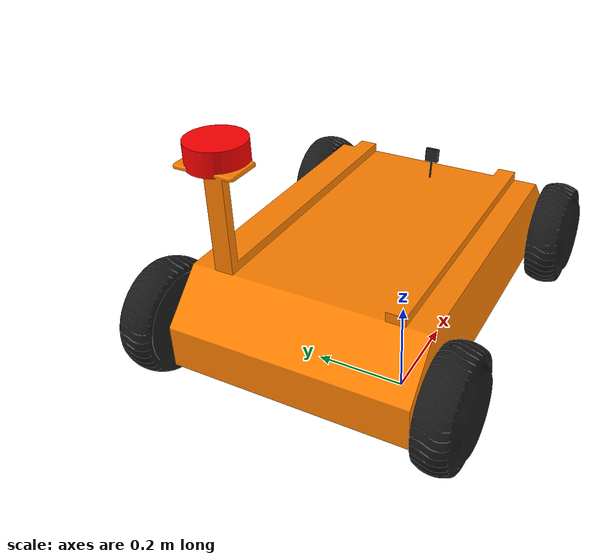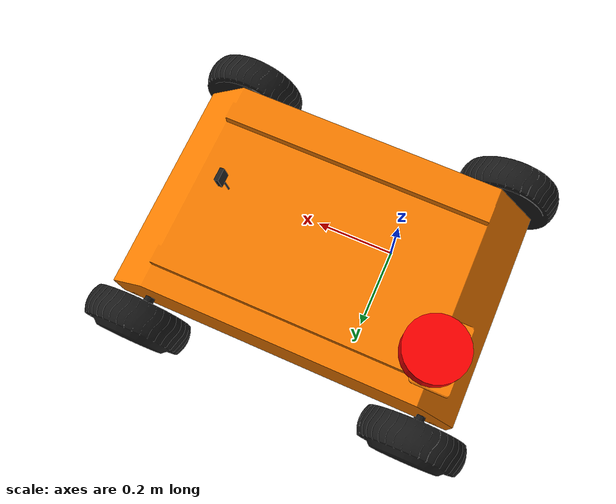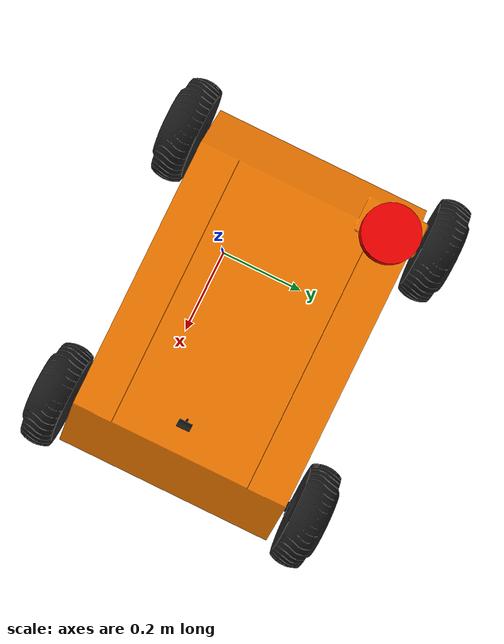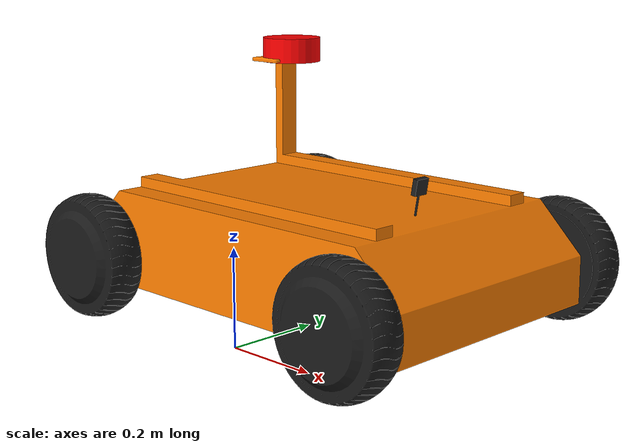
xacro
<?xml version="1.0"?>
<robot name="RALLP_2" xmlns:xacro="http://www.ros.org/wiki/xacro">
  <gazebo>
    <plugin filename="gz-sim-sensors-system" name="gz::sim::systems::Sensors">
      <render_engine>ogre2</render_engine>
    </plugin>
  </gazebo>

  <!-- Includes -->
  <xacro:include filename="$(find rallp)/urdf2/robot_core.xacro"/>
  <xacro:include filename="$(find rallp)/urdf2/inertial_macros.xacro"/>
  <xacro:include filename="$(find rallp)/urdf2/lidar.xacro"/>
  <xacro:include filename="$(find rallp)/urdf2/camera.xacro"/>
  <xacro:include filename="$(find rallp)/urdf2/gazebo_control.xacro"/>
  <xacro:include filename="$(find rallp)/urdf2/ros2_control.xacro"/>

  <!-- Define properties -->
  <xacro:property name="base_mesh_path" value="file:///home/ahmed-jeljli/rallp_v2.1/src/rallp/meshes/DAE"/>
  <xacro:property name="wheel_scale" value="1.5 1.5 1.5"/>
  <!-- Main robot structure -->
  <xacro:robot_core
    base_mesh="${base_mesh_path}/base/base_link.dae"
    wheel_mesh_path="${base_mesh_path}/wheel"/>

  <!-- Sensors -->
  <xacro:lidar_sensor/>

  <!-- Gazebo plugins -->
  <!-- No need to call a macro here, as gazebo_control.xacro directly defines plugins -->

  <!-- ROS 2 Control -->
  <xacro:ros2_control/> <!-- Call the ROS 2 Control macro -->

</robot>

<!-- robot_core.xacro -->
<robot xmlns:xacro="http://www.ros.org/wiki/xacro">

  <!-- Define constants -->
  <xacro:property name="M_PI" value="0"/>
  <xacro:property name="wheel_scale" value="1.5 1.5 1.5"/>

  <!-- Inertial Macros -->
  <xacro:macro name="inertial_box" params="mass x y z">
    <inertial>
      <origin xyz="${x/2} ${y/2} ${z/2}" rpy="0 0 0"/>
      <mass value="${mass}"/>
      <inertia ixx="${mass*(y*y + z*z)/12}"
               ixy="0"
               ixz="0"
               iyy="${mass*(x*x + z*z)/12}"
               iyz="0"
               izz="${mass*(x*x + y*y)/12}"/>
    </inertial>
  </xacro:macro>

  <xacro:macro name="inertial_cylinder" params="mass radius length">
    <inertial>
      <origin xyz="0 0 0" rpy="0 0 0"/>
      <mass value="${mass}"/>
      <inertia ixx="${mass*(3*radius*radius + length*length)/12}"
               ixy="0"
               ixz="0"
               iyy="${mass*(3*radius*radius + length*length)/12}"
               iyz="0"
               izz="${mass*(radius*radius)/2}"/>
    </inertial>
  </xacro:macro>

  <!-- Robot Core Macro -->
  <xacro:macro name="robot_core" params="base_mesh wheel_mesh_path">
    <!-- Base Link -->
    <link name="base_link">
      <visual>
        <origin xyz="0 0 -0.15" rpy="0 0 0"/>
        <geometry>
          <mesh filename="${base_mesh}"/>
        </geometry>
        <material name="Orange">
          <color rgba="1.0 0.5 0.0 1.0"/>
        </material>
      </visual>
      <collision>
        <origin xyz="0 0 -0.15" rpy="0 0 0"/>
        <geometry>
          <mesh filename="${base_mesh}"/>
        </geometry>
      </collision>
      <xacro:inertial_box mass="30" x="0.22" y="0.32" z="0.22"/>
      <gazebo>
        <mu1>1.0</mu1>
        <mu2>1.0</mu2>
        <kp>100000</kp>
        <kd>1.0</kd>
      </gazebo>
    </link>

    <!-- Base Footprint -->
    <link name="base_footprint"/>
    <joint name="base_joint" type="fixed">
      <parent link="base_link"/>
      <child link="base_footprint"/>
      <origin rpy="0 0 0" xyz="0.0 0.0 0.0"/>
      <dynamics damping="0.05"/>
    </joint>

    <!-- Wheels -->
    <xacro:wheel name="fr" parent="base_link" xyz="0.45 -0.23 0.185" mesh="${wheel_mesh_path}/fr_wheel.dae"/>
    <xacro:wheel name="fl" parent="base_link" xyz="0.45 0.47 0.185" mesh="${wheel_mesh_path}/fl_wheel.dae"/>
    <xacro:wheel name="rl" parent="base_link" xyz="-0.2 0.47 0.185" mesh="${wheel_mesh_path}/fl_wheel.dae"/>
    <xacro:wheel name="rr" parent="base_link" xyz="-0.2 -0.23 0.185" mesh="${wheel_mesh_path}/fr_wheel.dae"/>
  </xacro:macro>

  <!-- Wheel Macro -->
  <xacro:macro name="wheel" params="name parent xyz mesh">
    <link name="${name}_link">
      <visual>
        <origin xyz="0 0 0" rpy="${M_PI/2} 0 0"/>
        <geometry>
          <mesh filename="${mesh}" scale="${wheel_scale}"/>
        </geometry>
        <material name="DarkGray">
          <color rgba="0.1 0.1 0.1 1.0"/>
        </material>
      </visual>
      <collision>
        <origin xyz="0 0 0" rpy="${M_PI/2} 0 0"/>
        <geometry>
          <mesh filename="${mesh}" scale="${wheel_scale}"/>
        </geometry>
      </collision>
      <xacro:inertial_cylinder mass="1.5" radius="0.15" length="0.1"/>
    </link>

    <joint name="${name}_joint" type="continuous">
      <parent link="${parent}"/>
      <child link="${name}_link"/>
      <origin xyz="${xyz}" rpy="0 0 0"/>
      <axis xyz="0 1 0"/>
      <dynamics damping="0.05"/>
    </joint>
  </xacro:macro>

</robot>

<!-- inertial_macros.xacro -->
<robot xmlns:xacro="http://www.ros.org/wiki/xacro">

  <xacro:macro name="inertial_box" params="mass x y z">
    <inertial>
      <origin xyz="${x/2} ${y/2} ${z/2}" rpy="0 0 0"/>
      <mass value="${mass}"/>
      <inertia ixx="${mass*(y*y + z*z)/12}"
               ixy="0"
               ixz="0"
               iyy="${mass*(x*x + z*z)/12}"
               iyz="0"
               izz="${mass*(x*x + y*y)/12}"/>
    </inertial>
  </xacro:macro>

  <xacro:macro name="inertial_cylinder" params="mass radius length">
    <inertial>
      <origin xyz="0 0 0" rpy="1.51 0 0"/>
      <mass value="${mass}"/>
      <inertia ixx="${mass*(3*radius*radius + length*length)/12}"
               ixy="0"
               ixz="0"
               iyy="${mass*(3*radius*radius + length*length)/12}"
               iyz="0"
               izz="${mass*(radius*radius)/2}"/>
    </inertial>
  </xacro:macro>

</robot>

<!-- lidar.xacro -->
<robot xmlns:xacro="http://www.ros.org/wiki/xacro">

  <xacro:macro name="lidar_sensor">
    <link name="lidar_link">
      <visual>
        <geometry>
          <cylinder length="0.05" radius="0.06"/>
        </geometry>
        <material name="Red">
          <color rgba="1.0 0.0 0.0 1"/>
        </material>
      </visual>
      <collision>
        <geometry>
          <cylinder length="0.05" radius="0.06"/>
        </geometry>
      </collision>
      <inertial>
        <mass value="0.1"/>
        <inertia ixx="0.001" ixy="0" ixz="0" iyy="0.001" iyz="0" izz="0.001"/>
      </inertial>
    </link>

    <joint name="lidar_joint" type="fixed">
      <parent link="base_link"/>
      <child link="lidar_link"/>
      <origin xyz="-0.15 0.3 0.55" rpy="0 0 0"/>
    </joint>

    <gazebo reference="lidar_link">
      <sensor name="lidar_sensor" type="gpu_lidar">
        <pose>0 0 0 0 0 0</pose>
        <topic>/scan</topic>
        <update_rate>15</update_rate>
        <ray>
          <scan>
            <horizontal>
              <samples>360</samples>
              <resolution>1.0</resolution>
              <min_angle>-3.14</min_angle>
              <max_angle>3.14</max_angle>
            </horizontal>
            <vertical>
              <samples>1</samples>
              <min_angle>0</min_angle>
              <max_angle>0</max_angle>
            </vertical>
          </scan>
          <range>
            <min>0.1</min>
            <max>12.0</max>
            <resolution>0.01</resolution>
          </range>
          <noise>
            <type>gaussian</type>
            <mean>0.0</mean>
            <stddev>0.01</stddev>
          </noise>
        </ray>
        <plugin name="gz_lidar" filename="libgazebo_ros_laser.so">
          <frame_name>lidar_link</frame_name>
        </plugin>
      </sensor>
    </gazebo>
  </xacro:macro>
</robot>

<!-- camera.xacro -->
<robot xmlns:xacro="http://www.ros.org/wiki/xacro" >

    <joint name="camera_joint" type="fixed">
        <parent link="base_link"/>
        <child link="camera_link"/>
        <origin xyz="0.376 0.1 0.36" rpy="0 0.18 0"/>
    </joint>

    <link name="camera_link">
        <visual>
            <geometry>
                <box size="0.010 0.03 0.03"/>
            </geometry>
            <material name="black"/>
        </visual>
        <visual>
            <origin xyz="0 0 -0.05"/>
            <geometry>
                <cylinder radius="0.002" length="0.1"/>
            </geometry>
            <material name="black"/>
        </visual>
    </link>

    <joint name="camera_optical_joint" type="fixed">
        <parent link="camera_link"/>
        <child link="camera_link_optical"/>
        <origin xyz="0.1 0.1 0.35" rpy="${-pi/2} 0 ${-pi/2}"/>
    </joint>

    <link name="camera_link_optical"></link>

    <gazebo reference="camera_link">
        <material>Gazebo/Black</material>

        <sensor name="camera" type="camera">
            <pose> 0 0 0 0 0 0 </pose>
            <visualize>true</visualize>
            <update_rate>10</update_rate>
            <camera>
                <camera_info_topic>camera/camera_info</camera_info_topic>
                <horizontal_fov>1.089</horizontal_fov>
                <image>
                    <format>R8G8B8</format>
                    <width>640</width>
                    <height>480</height>
                </image>
                <clip>
                    <near>0.05</near>
                    <far>8.0</far>
                </clip>
            </camera>
            <plugin name="camera_controller" filename="libgazebo_ros_camera.so">
                        <topic>camera/image_raw</topic>
                        <gz_frame_id>camera_link_optical</gz_frame_id>
            </plugin>
        </sensor>
    </gazebo>

</robot>
